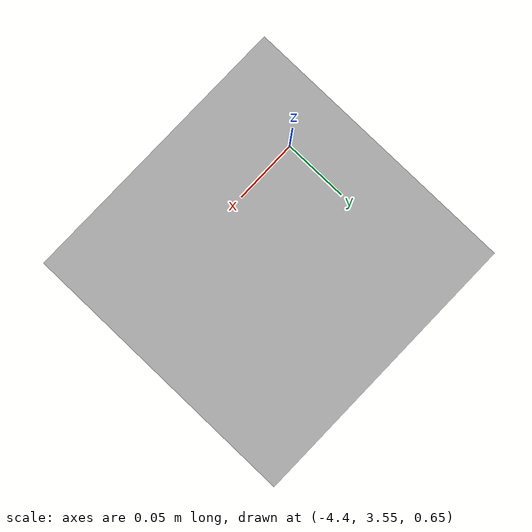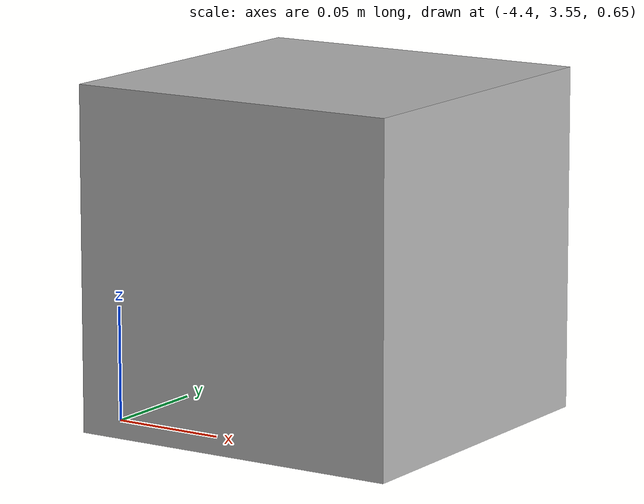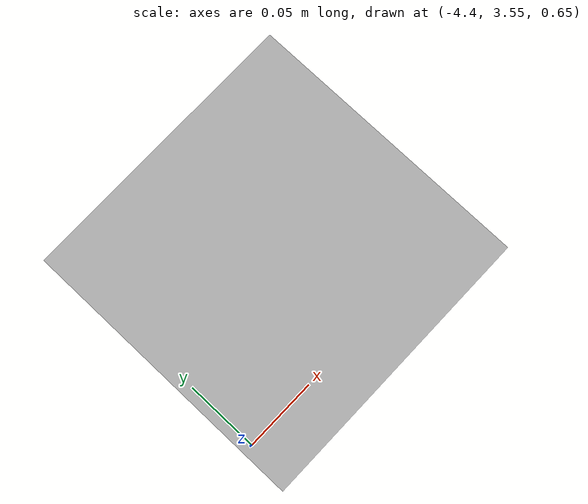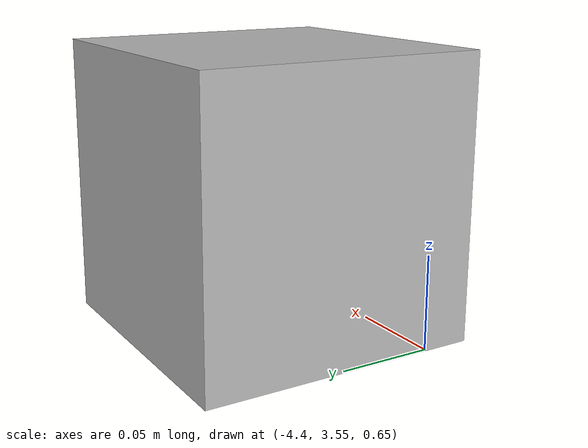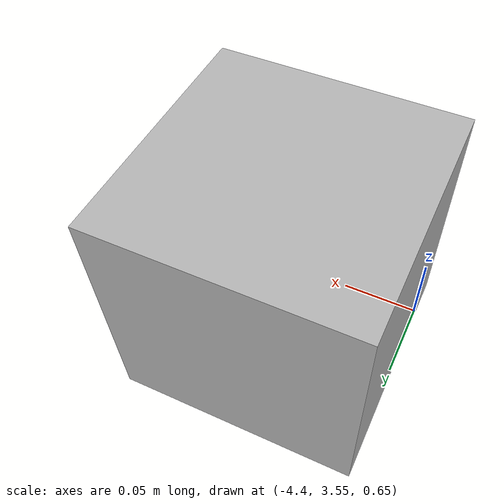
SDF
<sdf version="1.7">
 <world name="default">
  <model name="orthogonal_747_2.000.15_TS">
   <static>1</static>
   <link name="u_link_1_4_1">
    <inertial>
     <mass>1</mass>
     <inertia>
      <ixx>0.166667</ixx>
      <ixy>0</ixy>
      <ixz>0</ixz>
      <iyy>0.166667</iyy>
      <iyz>0</iyz>
      <izz>0.166667</izz>
     </inertia>
    </inertial>
    <pose>2.15 8.6 3.225 0 -0 0</pose>
    <visual name="visual_0">
     <laser_retro>1520</laser_retro>
     <geometry><box><size>0.15 1e-06 0.15</size></box></geometry>
     <material>
      <script><name>Gazebo/Grey</name><uri>file://media/materials/scripts/gazebo.material</uri></script>
      <shader type="pixel"><normal_map>__default__</normal_map></shader>
      <ambient>0.678 0.498 0.659 1</ambient>
      <diffuse>0.7 0.7 0.7 1</diffuse>
      <specular>0.01 0.01 0.01 1</specular>
      <emissive>0 0 0 1</emissive>
     </material>
     <pose>0 -0.075 0 0 -0 0</pose>
     <transparency>1</transparency>
    </visual>
    <visual name="visual_1">
     <laser_retro>1521</laser_retro>
     <geometry><box><size>0.15 1e-06 0.15</size></box></geometry>
     <material>
      <script><name>Gazebo/Grey</name><uri>file://media/materials/scripts/gazebo.material</uri></script>
      <shader type="pixel"><normal_map>__default__</normal_map></shader>
      <ambient>0.447 0.624 0.812 1</ambient>
      <diffuse>0.7 0.7 0.7 1</diffuse>
      <specular>0.01 0.01 0.01 1</specular>
      <emissive>0 0 0 1</emissive>
     </material>
     <pose>0 0.075 0 0 -0 0</pose>
     <transparency>1</transparency>
    </visual>
    <visual name="visual_2">
     <laser_retro>1522</laser_retro>
     <geometry><box><size>0.15 0.15 1e-06</size></box></geometry>
     <material>
      <script><name>Gazebo/Grey</name><uri>file://media/materials/scripts/gazebo.material</uri></script>
      <shader type="pixel"><normal_map>__default__</normal_map></shader>
      <ambient>0.988 0.686 0.243 1</ambient>
      <diffuse>0.7 0.7 0.7 1</diffuse>
      <specular>0.01 0.01 0.01 1</specular>
      <emissive>0 0 0 1</emissive>
     </material>
     <pose>0 0 -0.075 0 -0 0</pose>
     <transparency>1</transparency>
    </visual>
    <visual name="visual_3">
     <laser_retro>1523</laser_retro>
     <geometry><box><size>1e-06 0.15 0.15</size></box></geometry>
     <material>
      <script><name>Gazebo/Grey</name><uri>file://media/materials/scripts/gazebo.material</uri></script>
      <shader type="pixel"><normal_map>__default__</normal_map></shader>
      <ambient>0.988 0.914 0.31 1</ambient>
      <diffuse>0.7 0.7 0.7 1</diffuse>
      <specular>0.01 0.01 0.01 1</specular>
      <emissive>0 0 0 1</emissive>
     </material>
     <pose>0.075 0 0 0 -0 0</pose>
     <transparency>1</transparency>
    </visual>
    <visual name="visual_4">
     <laser_retro>1524</laser_retro>
     <geometry><box><size>0.15 0.15 1e-06</size></box></geometry>
     <material>
      <script><name>Gazebo/Grey</name><uri>file://media/materials/scripts/gazebo.material</uri></script>
      <shader type="pixel"><normal_map>__default__</normal_map></shader>
      <ambient>0.937 0.161 0.161 1</ambient>
      <diffuse>0.7 0.7 0.7 1</diffuse>
      <specular>0.01 0.01 0.01 1</specular>
      <emissive>0 0 0 1</emissive>
     </material>
     <pose>0 0 0.075 0 -0 0</pose>
     <transparency>1</transparency>
    </visual>
    <visual name="visual_5">
     <laser_retro>1525</laser_retro>
     <geometry><box><size>1e-06 0.15 0.15</size></box></geometry>
     <material>
      <script><name>Gazebo/Grey</name><uri>file://media/materials/scripts/gazebo.material</uri></script>
      <shader type="pixel"><normal_map>__default__</normal_map></shader>
      <ambient>0.541 0.886 0.204 1</ambient>
      <diffuse>0.7 0.7 0.7 1</diffuse>
      <specular>0.01 0.01 0.01 1</specular>
      <emissive>0 0 0 1</emissive>
     </material>
     <pose>-0.075 0 0 0 -0 0</pose>
     <transparency>1</transparency>
    </visual>
    <visual name="visual_texture">
     <geometry><box><size>0.149985 0.149985 0.149985</size></box></geometry>
     <material>
      <script>
       <uri>model://BASE_MODELS/simple_block_v2_textured/materials/scripts</uri>
       <uri>model://BASE_MODELS/simple_block_v2_textured/materials/textures</uri>
       <name>metal</name>
      </script>
     </material>
     <laser_retro>1526</laser_retro>
    </visual>
    <collision name="collision">
     <geometry><box><size>0.15 0.15 0.15</size></box></geometry>
     <surface>
      <friction>
       <ode><mu>1</mu><mu2>1</mu2><fdir1>0 0 0</fdir1><slip1>0</slip1><slip2>0</slip2></ode>
       <torsional>
        <coefficient>1</coefficient>
        <patch_radius>0</patch_radius>
        <surface_radius>0</surface_radius>
        <use_patch_radius>1</use_patch_radius>
        <ode><slip>0</slip></ode>
       </torsional>
      </friction>
      <bounce><restitution_coefficient>0</restitution_coefficient><threshold>1e+06</threshold></bounce>
      <contact>
       <collide_without_contact>0</collide_without_contact>
       <collide_without_contact_bitmask>1</collide_without_contact_bitmask>
       <collide_bitmask>1</collide_bitmask>
       <ode>
        <soft_cfm>0</soft_cfm>
        <soft_erp>0.2</soft_erp>
        <kp>1e+13</kp>
        <kd>1</kd>
        <max_vel>0.01</max_vel>
        <min_depth>0</min_depth>
       </ode>
       <bullet>
        <split_impulse>1</split_impulse>
        <split_impulse_penetration_threshold>-0.01</split_impulse_penetration_threshold>
        <soft_cfm>0</soft_cfm>
        <soft_erp>0.2</soft_erp>
        <kp>1e+13</kp>
        <kd>1</kd>
       </bullet>
      </contact>
     </surface>
    </collision>
   </link>
   <pose>-6.47624 -5 -2.5 0 -0 0</pose>
  </model>
 </world>
</sdf>
